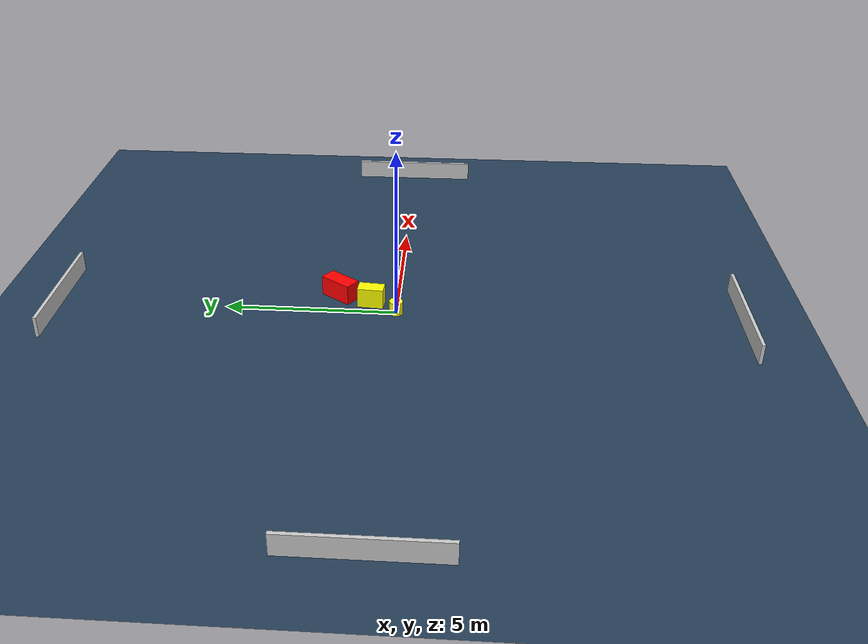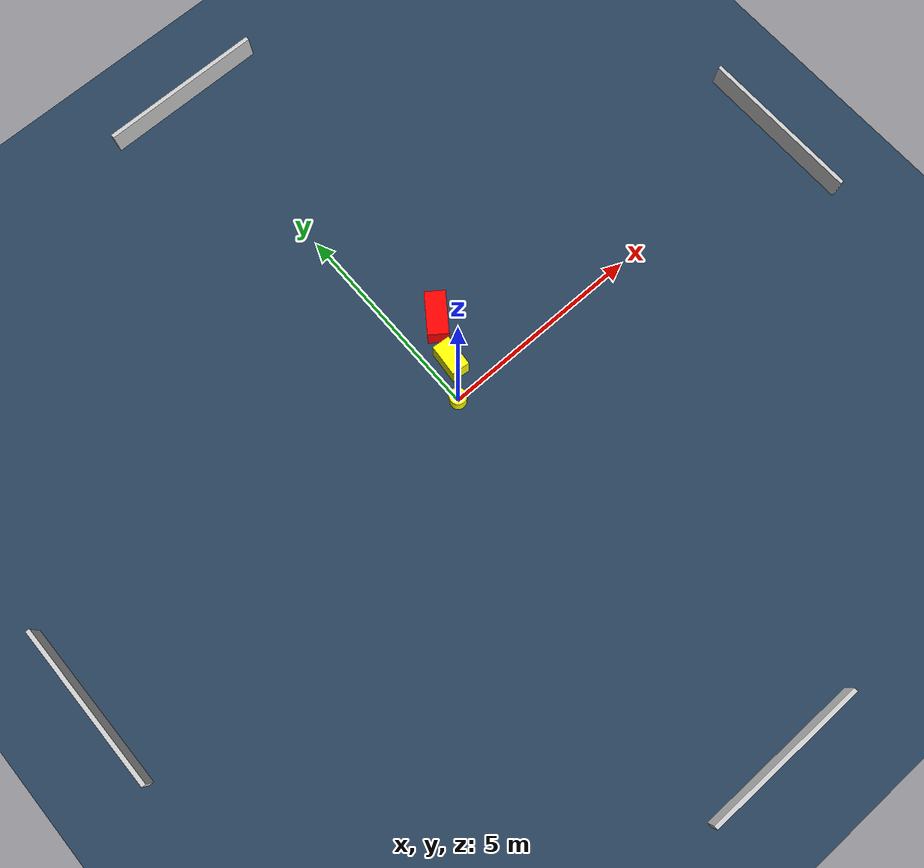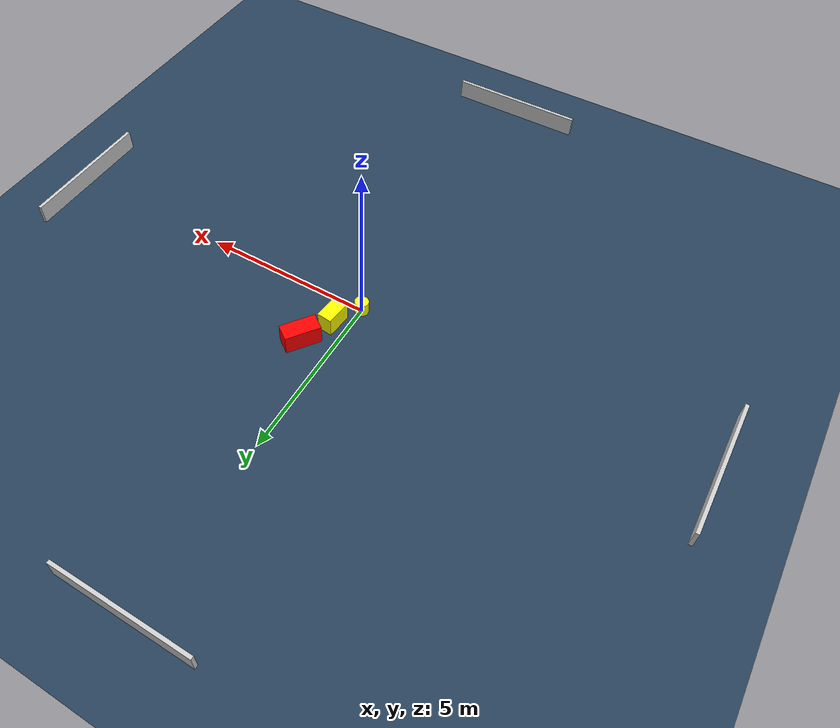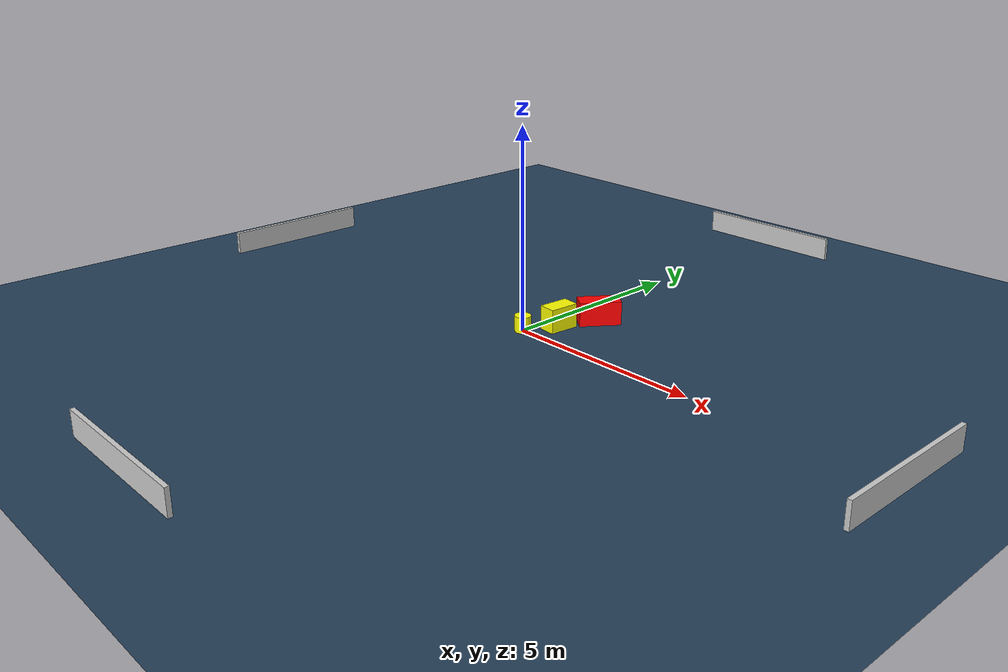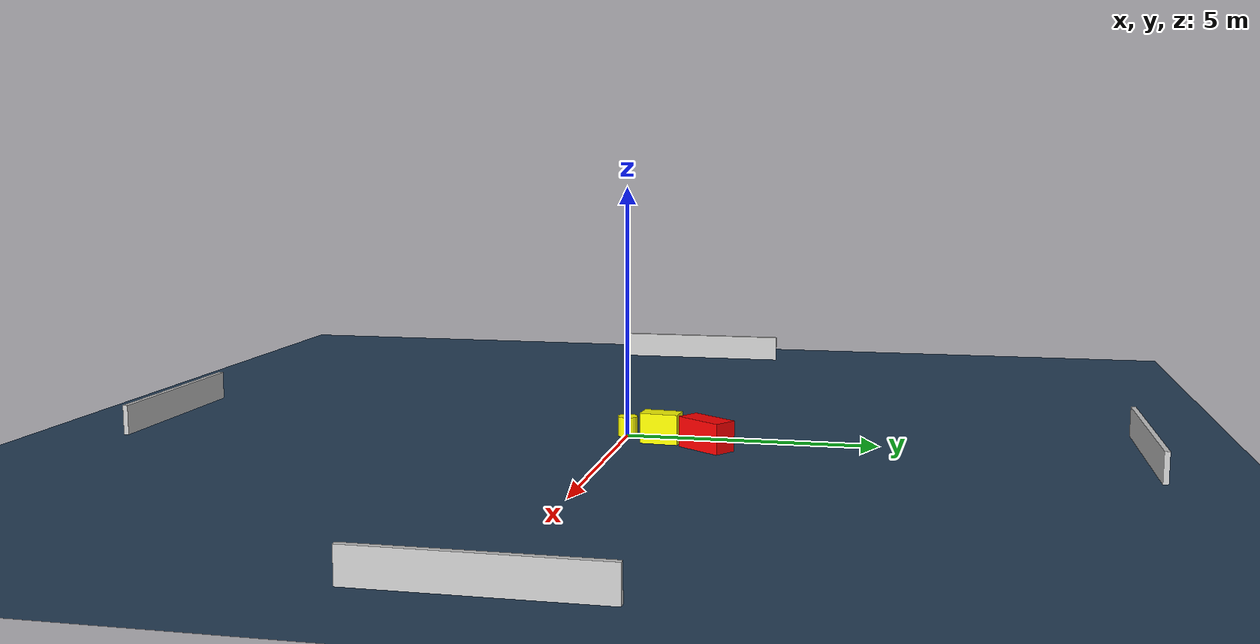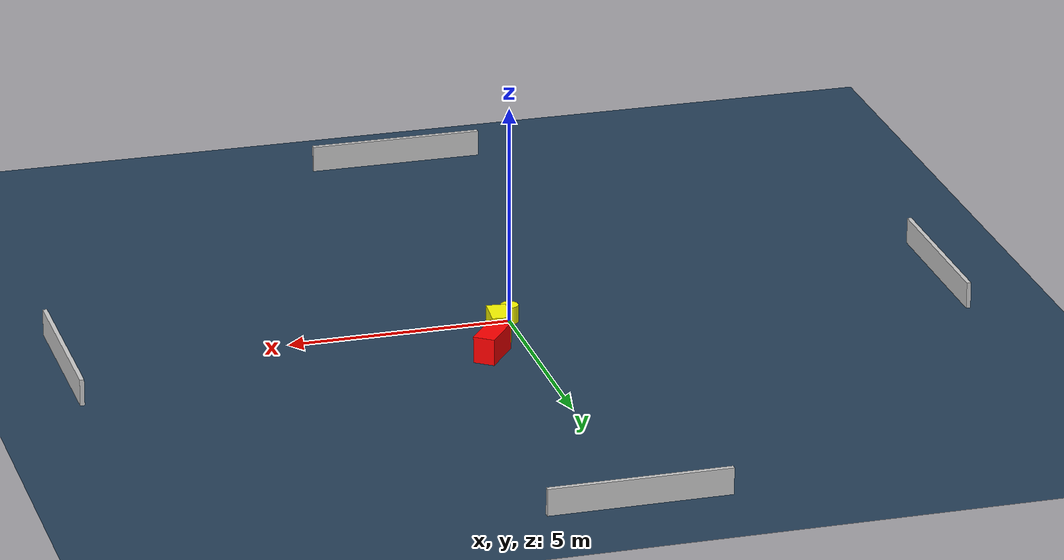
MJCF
<?xml version="1.0" ?>
<mujoco model="generated_environment">
  <option timestep="0.01" integrator="RK4" cone="elliptic"/>
  <default>
    <geom density="1"/>
  </default>
  <asset>
    <texture builtin="gradient" height="3072" name="skybox" rgb1="0.3 0.5 0.7" rgb2="0 0 0" type="skybox" width="512"/>
    <texture builtin="checker" height="300" name="groundplane" rgb1="0.2 0.3 0.4" rgb2="0.1 0.2 0.3" type="2d" width="300"/>
    <material name="groundplane" reflectance="0.2" texrepeat="5 5" texture="groundplane"/>
  </asset>
  <worldbody>
    <light dir="0 0 -1" directional="true" pos="0 0 1.5"/>
    <geom condim="3" friction="0.5 0.005 0.001" material="groundplane" name="floor" pos="0 0 0" size="0 0 0.05" type="plane"/>
    <body name="walls">
      <geom name="wall_1" condim="4" pos="-10.0 0.0 0.3" rgba="0.800000011920929 0.800000011920929 0.800000011920929 1.0" size="0.05 2.0 0.3" type="box"/>
      <geom name="wall_2" condim="4" pos="10.0 0.0 0.3" rgba="0.800000011920929 0.800000011920929 0.800000011920929 1.0" size="0.05 2.0 0.3" type="box"/>
      <geom name="wall_3" condim="4" pos="0.0 -10.0 0.3" rgba="0.800000011920929 0.800000011920929 0.800000011920929 1.0" size="2.0 0.05 0.3" type="box"/>
      <geom name="wall_4" condim="4" pos="0.0 10.0 0.3" rgba="0.800000011920929 0.800000011920929 0.800000011920929 1.0" size="2.0 0.05 0.3" type="box"/>
    </body>
    <body name="robot">
      <joint name="joint_x" type="slide" pos="0 0 0" axis="1 0 0"/>
      <joint name="joint_y" type="slide" pos="0 0 0" axis="0 1 0"/>
      <geom name="robot" type="cylinder" pos="0.0 0.0 0.2" size="0.2 0.2 0.0" mass="5.0" friction="1.0 0.005 0.0001" condim="4" rgba="1.0 1.0 0.0 1.0"/>
    </body>
    <body name="obstacle_1_movable">
      <geom name="obstacle_1_movable" condim="4" pos="0.4537289282620996 0.7678520225573043 0.3" euler="0 0 84.93627490504709" friction="0.0 0.005 0.001" rgba="1.0 1.0 0.0 1.0" size="0.3811419114790501 0.21663052183534465 0.3" type="box" mass="0.1"/>
      <joint type="free"/>
    </body>
    <body name="obstacle_2_static">
      <geom name="obstacle_2_static" condim="4" pos="0.8692703274567586 1.732347023611766 0.3" euler="0 0 323.7953069340037" friction="0.0 0.005 0.001" rgba="1.0 0.0 0.0 1.0" size="0.24463096769371345 0.5138149216418642 0.3" type="box"/>
    </body>
  </worldbody>
  <actuator>
    <motor name="actuator_x" joint="joint_x" gear="1" ctrlrange="-1 1"/>
    <motor name="actuator_y" joint="joint_y" gear="1" ctrlrange="-1 1"/>
  </actuator>
</mujoco>
